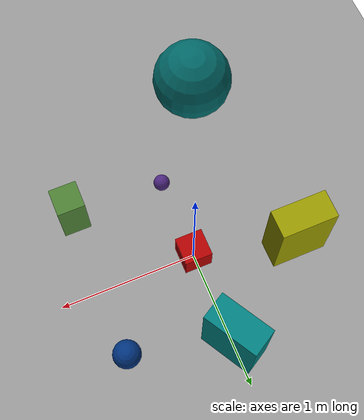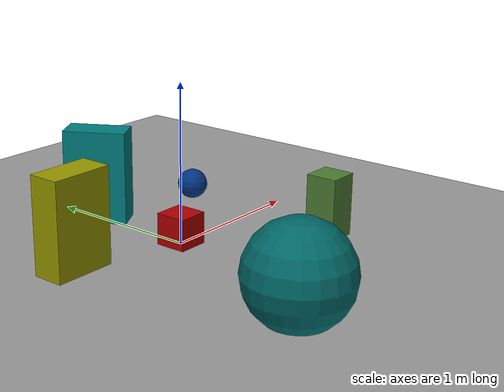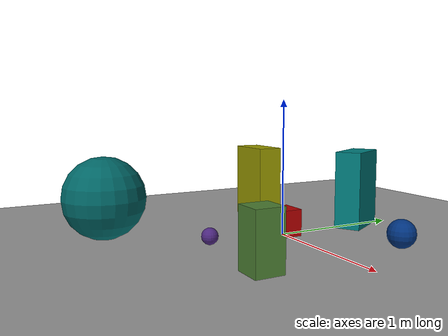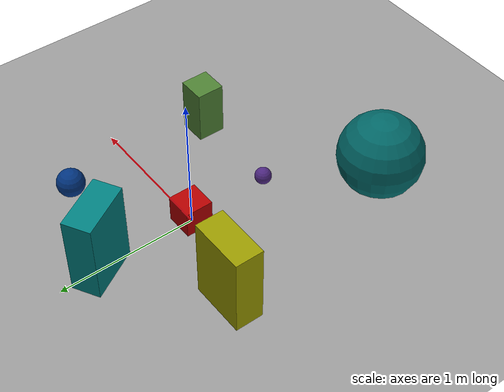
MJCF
<mujoco>
   <visual>
      <headlight ambient="1 1 1" />
   </visual>

   <option gravity="0 0 -1" />

   <worldbody>
      <geom type="plane" size="10 10 0.1" rgba=".6 .6 .6 1"/>

      <body pos="0 0 0.1" euler="0 0 0">
         <joint type = "free"/>
         <geom type="box" size=".1 .1 .1" rgba="0.7 0 0 1"/>
      </body>

      <body pos="0.7 0.5 0.1" euler="0 0 0">
         <joint type = "free"/>
         <geom type="sphere" size=".1" rgba="0 0.2 0.5 1"/>
      </body>

      <body pos="-0.7 0.2 .3" euler="0 0 90">
         <joint type = "free"/>
         <geom type="box" size=".1 .2 .3" rgba="0.6 0.6 0 1"/>
      </body>

      <body pos="-0.5 -1.2 .3" euler="0 0 0">
         <joint type = "free"/>
         <geom type="sphere" size=".3" rgba="0 .4 .4 1"/>
      </body>

      <body pos="0 .7 .3" euler="0 0 30">
         <joint type = "free"/>
         <geom type="box" size=".1 .2 .3" rgba="0 .5 .5 1"/>
      </body>

      <body pos="0 -.6 .06" euler="0 0 0">
         <joint type = "free"/>
         <geom type="sphere" size=".06" rgba=".3 .15 .5 1"/>
      </body>

      <body pos=".7 -.6 .2" euler="0 0 0">
         <joint type = "free"/>
         <geom type="box" size=".1 .1 .2" rgba=".3 .5 .2 1"/>
      </body>-->

   </worldbody>
</mujoco>
